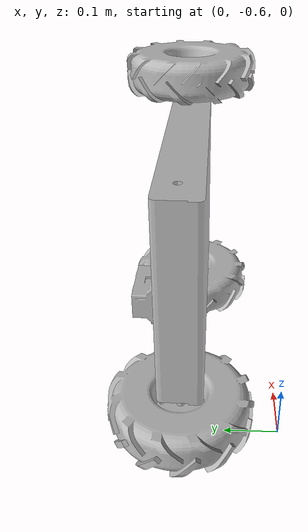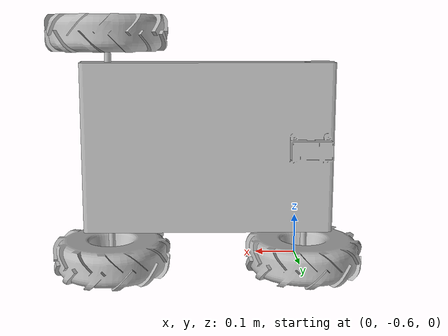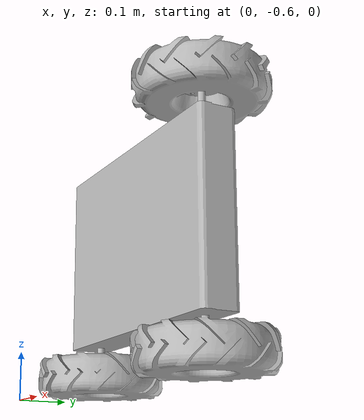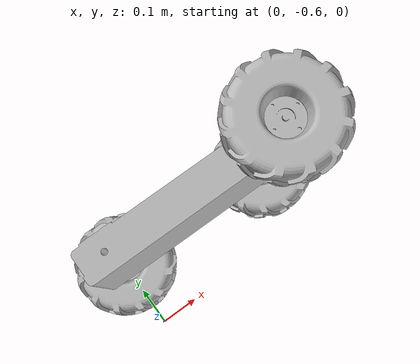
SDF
<sdf version='1.7'>
  <model name='Farmbot_v2'>
    <link name='base_link'>
      <inertial>
        <pose>0.225594 0.309521 0.421446 0 -0 0</pose>
        <mass>17.331</mass>
        <inertia>
          <ixx>0.216565</ixx>
          <ixy>6.28258e-08</ixy>
          <ixz>-3.05067e-08</ixz>
          <iyy>0.46182</iyy>
          <iyz>9.62708e-08</iyz>
          <izz>0.65942</izz>
        </inertia>
      </inertial>
      <collision name='base_link_collision'>
        <pose>0 0 0 0 -0 0</pose>
        <geometry>
          <mesh>
            <scale>1 1 1</scale>
            <uri>model://farmbot/meshes/base_link.STL</uri>
          </mesh>
        </geometry>
      </collision>
      <visual name='base_link_visual'>
        <pose>0 0 0 0 -0 0</pose>
        <geometry>
          <mesh>
            <scale>1 1 1</scale>
            <uri>model://farmbot/meshes/base_link.stl</uri>
          </mesh>
        </geometry>
      </visual>
    </link>
    <joint name='BackRightJoint' type='revolute'>
      <pose relative_to='base_link'>0.006205 -0.41971 0.015678 0 0 -3.1289</pose>
      <parent>base_link</parent>
      <child>BackRight</child>
      <axis>
        <xyz>0 0 1</xyz>
        <limit>
          <lower>-1e+16</lower>
          <upper>1e+16</upper>
        </limit>
        <dynamics>
          <spring_reference>0</spring_reference>
          <spring_stiffness>0</spring_stiffness>
        </dynamics>
      </axis>
    </joint>
    <link name='BackRight'>
      <pose relative_to='BackRightJoint'>0 0 0 0 -0 0</pose>
      <inertial>
        <pose>0 0 0.039986 0 -0 0</pose>
        <mass>3.32166</mass>
        <inertia>
          <ixx>0.0164283</ixx>
          <ixy>-1.28892e-10</ixy>
          <ixz>1.32061e-09</ixz>
          <iyy>0.0164283</iyy>
          <iyz>-6.22008e-10</iyz>
          <izz>0.0296915</izz>
        </inertia>
      </inertial>
      <collision name='BackRight_collision'>
        <pose>0 0 0 0 -0 0</pose>
        <geometry>
          <mesh>
            <scale>1 1 1</scale>
            <uri>model://farmbot/meshes/BackRight.stl</uri>
          </mesh>
        </geometry>
      </collision>
      <visual name='BackRight_visual'>
        <pose>0 0 0 0 -0 0</pose>
        <geometry>
          <mesh>
            <scale>1 1 1</scale>
            <uri>model://farmbot/meshes/BackRight.stl</uri>
          </mesh>
        </geometry>
      </visual>
    </link>
    <joint name='FrontLeftJoint' type='revolute'>
      <pose relative_to='base_link'>0.44821 -0.41971 0.43791 -3.14159 0 0</pose>
      <parent>base_link</parent>
      <child>FrontLeft</child>
      <axis>
        <xyz>0 0 1</xyz>
        <limit>
          <lower>-1e+16</lower>
          <upper>1e+16</upper>
        </limit>
        <dynamics>
          <spring_reference>0</spring_reference>
          <spring_stiffness>0</spring_stiffness>
        </dynamics>
      </axis>
    </joint>
    <link name='FrontLeft'>
      <pose relative_to='FrontLeftJoint'>0 0 0 0 -0 0</pose>
      <inertial>
        <pose>0 -0 -0.12547 0 -0 0</pose>
        <mass>3.3217</mass>
        <inertia>
          <ixx>0.016428</ixx>
          <ixy>6.2974e-10</ixy>
          <ixz>-8.8368e-10</ixz>
          <iyy>0.016428</iyy>
          <iyz>-1.161e-09</iyz>
          <izz>0.029692</izz>
        </inertia>
      </inertial>
      <collision name='FrontLeft_collision'>
        <pose>0 0 0 0 -0 0</pose>
        <geometry>
          <mesh>
            <scale>1 1 1</scale>
            <uri>model://farmbot/meshes/FrontLeft.stl</uri>
          </mesh>
        </geometry>
      </collision>
      <visual name='FrontLeft_visual'>
        <pose>0 0 0 0 -0 0</pose>
        <geometry>
          <mesh>
            <scale>1 1 1</scale>
            <uri>model://farmbot/meshes/FrontLeft.stl</uri>
          </mesh>
        </geometry>
      </visual>
    </link>
    <joint name='FrontRightJoint' type='revolute'>
      <pose relative_to='base_link'>0.44821 -0.41971 0.015678 0 -0 1.776</pose>
      <parent>base_link</parent>
      <child>FrontRight</child>
      <axis>
        <xyz>0 0 1</xyz>
        <limit>
          <lower>-1e+16</lower>
          <upper>1e+16</upper>
        </limit>
        <dynamics>
          <spring_reference>0</spring_reference>
          <spring_stiffness>0</spring_stiffness>
        </dynamics>
      </axis>
    </joint>
    <link name='FrontRight'>
      <pose relative_to='FrontRightJoint'>0 0 0 0 -0 0</pose>
      <inertial>
        <pose>-0 0 0.039986 0 -0 0</pose>
        <mass>3.3217</mass>
        <inertia>
          <ixx>0.016428</ixx>
          <ixy>1.1613e-10</ixy>
          <ixz>6.1284e-10</ixz>
          <iyy>0.016428</iyy>
          <iyz>1.3241e-09</iyz>
          <izz>0.029692</izz>
        </inertia>
      </inertial>
      <collision name='FrontRight_collision'>
        <pose>0 0 0 0 -0 0</pose>
        <geometry>
          <mesh>
            <scale>1 1 1</scale>
            <uri>model://farmbot/meshes/FrontRight.stl</uri>
          </mesh>
        </geometry>
      </collision>
      <visual name='FrontRight_visual'>
        <pose>0 0 0 0 -0 0</pose>
        <geometry>
          <mesh>
            <scale>1 1 1</scale>
            <uri>model://farmbot/meshes/FrontRight.stl</uri>
          </mesh>
        </geometry>
      </visual>
    </link>
  </model>
</sdf>
